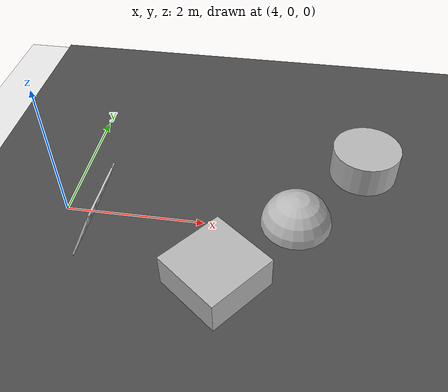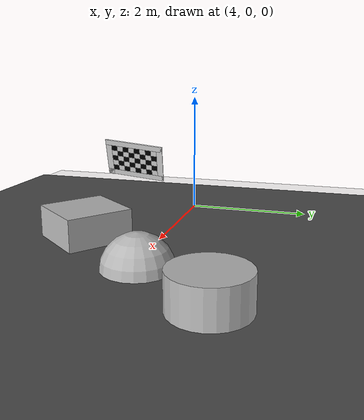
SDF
<sdf version="1.6">
 <world name="default">
  <light name="sun" type="directional">
   <pose>0 0 10 0 -0 0</pose>
   <diffuse>0.8 0.8 0.8 1</diffuse>
   <specular>0.2 0.2 0.2 1</specular>
   <attenuation>
    <range>1000</range>
    <constant>0.9</constant>
    <linear>0.01</linear>
    <quadratic>0.001</quadratic>
   </attenuation>
   <direction>-0.5 0.1 -0.9</direction>
   <spot><inner_angle>0</inner_angle><outer_angle>0</outer_angle><falloff>0</falloff></spot>
  </light>
  <model name="ground_plane">
   <static>1</static>
   <link name="link">
    <collision name="collision">
     <geometry><plane><normal>0 0 1</normal><size>100 100</size></plane></geometry>
     <surface><friction><ode><mu>100</mu><mu2>50</mu2></ode></friction></surface>
    </collision>
    <visual name="visual">
     <cast_shadows>0</cast_shadows>
     <geometry><plane><normal>0 0 1</normal><size>100 100</size></plane></geometry>
     <material>
      <script><uri>file://media/materials/scripts/gazebo.material</uri><name>Gazebo/Grey</name></script>
     </material>
    </visual>
   </link>
  </model>
  <gravity>0 0 -9.8</gravity>
  <magnetic_field>6e-06 2.3e-05 -4.2e-05</magnetic_field>
  <atmosphere type="adiabatic"/>
  <physics name="default_physics" default="0" type="ode">
   <max_step_size>0.001</max_step_size>
   <real_time_factor>1</real_time_factor>
   <real_time_update_rate>1000</real_time_update_rate>
  </physics>
  <scene><ambient>0.4 0.4 0.4 1</ambient><background>0.7 0.7 0.7 1</background><shadows>1</shadows></scene>
  <spherical_coordinates>
   <surface_model>EARTH_WGS84</surface_model>
   <latitude_deg>0</latitude_deg>
   <longitude_deg>0</longitude_deg>
   <elevation>0</elevation>
   <heading_deg>0</heading_deg>
  </spherical_coordinates>
  <model name="asphalt_plane">
   <static>1</static>
   <link name="link">
    <collision name="collision"><geometry><box><size>20 20 0.1</size></box></geometry></collision>
    <visual name="visual">
     <cast_shadows>0</cast_shadows>
     <geometry><box><size>20 20 0.1</size></box></geometry>
     <material>
      <script>
       <uri>model://asphalt_plane/materials/scripts</uri>
       <uri>model://asphalt_plane/materials/textures</uri>
       <name>vrc/asphalt</name>
      </script>
     </material>
    </visual>
   </link>
   <pose>12.4811 0 0 0 -0 0</pose>
  </model>
  <audio><device>default</device></audio>
  <model name="textured_shapes">
   <pose>7.28076 0.152221 0.03062 0 0 -0.6635</pose>
   <link name="box">
    <pose>0 -1.5 0 0 -0 0</pose>
    <collision name="collision"><geometry><box><size>1 1 1</size></box></geometry></collision>
    <visual name="visual">
     <geometry><box><size>1 1 1</size></box></geometry>
     <material>
      <script>
       <uri>model://textured_shapes/materials/scripts</uri>
       <uri>model://textured_shapes/materials/textures</uri>
       <name>TexturedShape/Squares</name>
      </script>
     </material>
    </visual>
    <inertial>
     <inertia><ixx>1</ixx><ixy>0</ixy><ixz>0</ixz><iyy>1</iyy><iyz>0</iyz><izz>1</izz></inertia>
     <mass>1</mass>
    </inertial>
   </link>
   <link name="sphere">
    <collision name="collision"><geometry><sphere><radius>0.5</radius></sphere></geometry></collision>
    <visual name="visual">
     <geometry><sphere><radius>0.5</radius></sphere></geometry>
     <material>
      <script>
       <uri>model://textured_shapes/materials/scripts</uri>
       <uri>model://textured_shapes/materials/textures</uri>
       <name>TexturedShape/Squares</name>
      </script>
     </material>
    </visual>
    <inertial>
     <inertia><ixx>1</ixx><ixy>0</ixy><ixz>0</ixz><iyy>1</iyy><iyz>0</iyz><izz>1</izz></inertia>
     <mass>1</mass>
    </inertial>
   </link>
   <link name="cylinder">
    <pose>0 1.5 0 0 -0 0</pose>
    <collision name="collision">
     <geometry><cylinder><radius>0.5</radius><length>1</length></cylinder></geometry>
    </collision>
    <visual name="visual">
     <geometry><cylinder><radius>0.5</radius><length>1</length></cylinder></geometry>
     <material>
      <script>
       <uri>model://textured_shapes/materials/scripts</uri>
       <uri>model://textured_shapes/materials/textures</uri>
       <name>TexturedShape/Squares</name>
      </script>
     </material>
    </visual>
    <inertial>
     <inertia><ixx>1</ixx><ixy>0</ixy><ixz>0</ixz><iyy>1</iyy><iyz>0</iyz><izz>1</izz></inertia>
     <mass>1</mass>
    </inertial>
   </link>
  </model>
  <model name="landmark">
   <static>1</static>
   <link name="base_link">
    <collision name="collision">
     <pose>0 0 0.01 0 -0 0</pose>
     <geometry><box><size>1 0.7 0.02</size></box></geometry>
    </collision>
    <visual name="border0">
     <pose>0.45 0 0.01 0 -0 0</pose>
     <geometry><box><size>0.1 0.7 0.02</size></box></geometry>
     <material><ambient>1 1 1 1</ambient><specular>1 1 1 1</specular><diffuse>1 1 1 1</diffuse></material>
    </visual>
    <visual name="border1">
     <pose>-0.45 0 0.01 0 -0 0</pose>
     <geometry><box><size>0.1 0.7 0.02</size></box></geometry>
     <material><ambient>1 1 1 1</ambient><specular>1 1 1 1</specular><diffuse>1 1 1 1</diffuse></material>
    </visual>
    <visual name="border2">
     <pose>0 0.3 0.01 0 -0 0</pose>
     <geometry><box><size>1 0.1 0.02</size></box></geometry>
     <material><ambient>1 1 1 1</ambient><specular>1 1 1 1</specular><diffuse>1 1 1 1</diffuse></material>
    </visual>
    <visual name="border3">
     <pose>0 -0.3 0.01 0 -0 0</pose>
     <geometry><box><size>1 0.1 0.02</size></box></geometry>
     <material><ambient>1 1 1 1</ambient><specular>1 1 1 1</specular><diffuse>1 1 1 1</diffuse></material>
    </visual>
    <pose>0.02 0 0 1.57 0 -1.57</pose>
    <visual name="74">
     <pose>0.35 0.2 0.01 0 -0 0</pose>
     <geometry><box><size>0.1 0.1 0.02</size></box></geometry>
     <material><ambient>0 0 0 1</ambient><specular>0 0 0 1</specular><diffuse>0 0 0 1</diffuse></material>
    </visual>
    <pose>0.02 0 0 1.57 0 -1.57</pose>
    <visual name="73">
     <pose>0.35 0.1 0.01 0 -0 0</pose>
     <geometry><box><size>0.1 0.1 0.02</size></box></geometry>
     <material><ambient>1 1 1 1</ambient><specular>1 1 1 1</specular><diffuse>1 1 1 1</diffuse></material>
    </visual>
    <pose>0.02 0 0 1.57 0 -1.57</pose>
    <visual name="72">
     <pose>0.35 0 0.01 0 -0 0</pose>
     <geometry><box><size>0.1 0.1 0.02</size></box></geometry>
     <material><ambient>0 0 0 1</ambient><specular>0 0 0 1</specular><diffuse>0 0 0 1</diffuse></material>
    </visual>
    <pose>0.02 0 0 1.57 0 -1.57</pose>
    <visual name="71">
     <pose>0.35 -0.1 0.01 0 -0 0</pose>
     <geometry><box><size>0.1 0.1 0.02</size></box></geometry>
     <material><ambient>1 1 1 1</ambient><specular>1 1 1 1</specular><diffuse>1 1 1 1</diffuse></material>
    </visual>
    <pose>0.02 0 0 1.57 0 -1.57</pose>
    <visual name="70">
     <pose>0.35 -0.2 0.01 0 -0 0</pose>
     <geometry><box><size>0.1 0.1 0.02</size></box></geometry>
     <material><ambient>0 0 0 1</ambient><specular>0 0 0 1</specular><diffuse>0 0 0 1</diffuse></material>
    </visual>
    <pose>0.02 0 0 1.57 0 -1.57</pose>
    <visual name="64">
     <pose>0.25 0.2 0.01 0 -0 0</pose>
     <geometry><box><size>0.1 0.1 0.02</size></box></geometry>
     <material><ambient>1 1 1 1</ambient><specular>1 1 1 1</specular><diffuse>1 1 1 1</diffuse></material>
    </visual>
    <pose>0.02 0 0 1.57 0 -1.57</pose>
    <visual name="63">
     <pose>0.25 0.1 0.01 0 -0 0</pose>
     <geometry><box><size>0.1 0.1 0.02</size></box></geometry>
     <material><ambient>0 0 0 1</ambient><specular>0 0 0 1</specular><diffuse>0 0 0 1</diffuse></material>
    </visual>
    <pose>0.02 0 0 1.57 0 -1.57</pose>
    <visual name="62">
     <pose>0.25 0 0.01 0 -0 0</pose>
     <geometry><box><size>0.1 0.1 0.02</size></box></geometry>
     <material><ambient>1 1 1 1</ambient><specular>1 1 1 1</specular><diffuse>1 1 1 1</diffuse></material>
    </visual>
    <pose>0.02 0 0 1.57 0 -1.57</pose>
    <visual name="61">
     <pose>0.25 -0.1 0.01 0 -0 0</pose>
     <geometry><box><size>0.1 0.1 0.02</size></box></geometry>
     <material><ambient>0 0 0 1</ambient><specular>0 0 0 1</specular><diffuse>0 0 0 1</diffuse></material>
    </visual>
    <pose>0.02 0 0 1.57 0 -1.57</pose>
    <visual name="60">
     <pose>0.25 -0.2 0.01 0 -0 0</pose>
     <geometry><box><size>0.1 0.1 0.02</size></box></geometry>
     <material><ambient>1 1 1 1</ambient><specular>1 1 1 1</specular><diffuse>1 1 1 1</diffuse></material>
    </visual>
    <pose>0.02 0 0 1.57 0 -1.57</pose>
    <visual name="54">
     <pose>0.15 0.2 0.01 0 -0 0</pose>
     <geometry><box><size>0.1 0.1 0.02</size></box></geometry>
     <material><ambient>0 0 0 1</ambient><specular>0 0 0 1</specular><diffuse>0 0 0 1</diffuse></material>
    </visual>
    <pose>0.02 0 0 1.57 0 -1.57</pose>
    <visual name="53">
     <pose>0.15 0.1 0.01 0 -0 0</pose>
     <geometry><box><size>0.1 0.1 0.02</size></box></geometry>
     <material><ambient>1 1 1 1</ambient><specular>1 1 1 1</specular><diffuse>1 1 1 1</diffuse></material>
    </visual>
    <pose>0.02 0 0 1.57 0 -1.57</pose>
    <visual name="52">
     <pose>0.15 0 0.01 0 -0 0</pose>
     <geometry><box><size>0.1 0.1 0.02</size></box></geometry>
     <material><ambient>0 0 0 1</ambient><specular>0 0 0 1</specular><diffuse>0 0 0 1</diffuse></material>
    </visual>
    <pose>0.02 0 0 1.57 0 -1.57</pose>
    <visual name="51">
     <pose>0.15 -0.1 0.01 0 -0 0</pose>
     <geometry><box><size>0.1 0.1 0.02</size></box></geometry>
     <material><ambient>1 1 1 1</ambient><specular>1 1 1 1</specular><diffuse>1 1 1 1</diffuse></material>
    </visual>
    <pose>0.02 0 0 1.57 0 -1.57</pose>
    <visual name="50">
     <pose>0.15 -0.2 0.01 0 -0 0</pose>
     <geometry><box><size>0.1 0.1 0.02</size></box></geometry>
     <material><ambient>0 0 0 1</ambient><specular>0 0 0 1</specular><diffuse>0 0 0 1</diffuse></material>
    </visual>
    <pose>0.02 0 0 1.57 0 -1.57</pose>
    <visual name="44">
     <pose>0.05 0.2 0.01 0 -0 0</pose>
     <geometry><box><size>0.1 0.1 0.02</size></box></geometry>
     <material><ambient>1 1 1 1</ambient><specular>1 1 1 1</specular><diffuse>1 1 1 1</diffuse></material>
    </visual>
    <pose>0.02 0 0 1.57 0 -1.57</pose>
    <visual name="43">
     <pose>0.05 0.1 0.01 0 -0 0</pose>
     <geometry><box><size>0.1 0.1 0.02</size></box></geometry>
     <material><ambient>0 0 0 1</ambient><specular>0 0 0 1</specular><diffuse>0 0 0 1</diffuse></material>
    </visual>
    <pose>0.02 0 0 1.57 0 -1.57</pose>
    <visual name="42">
     <pose>0.05 0 0.01 0 -0 0</pose>
     <geometry><box><size>0.1 0.1 0.02</size></box></geometry>
     <material><ambient>1 1 1 1</ambient><specular>1 1 1 1</specular><diffuse>1 1 1 1</diffuse></material>
    </visual>
    <pose>0.02 0 0 1.57 0 -1.57</pose>
    <visual name="41">
     <pose>0.05 -0.1 0.01 0 -0 0</pose>
     <geometry><box><size>0.1 0.1 0.02</size></box></geometry>
     <material><ambient>0 0 0 1</ambient><specular>0 0 0 1</specular><diffuse>0 0 0 1</diffuse></material>
    </visual>
    <pose>0.02 0 0 1.57 0 -1.57</pose>
    <visual name="40">
     <pose>0.05 -0.2 0.01 0 -0 0</pose>
     <geometry><box><size>0.1 0.1 0.02</size></box></geometry>
     <material><ambient>1 1 1 1</ambient><specular>1 1 1 1</specular><diffuse>1 1 1 1</diffuse></material>
    </visual>
    <pose>0.02 0 0 1.57 0 -1.57</pose>
    <visual name="34">
     <pose>-0.05 0.2 0.01 0 -0 0</pose>
     <geometry><box><size>0.1 0.1 0.02</size></box></geometry>
     <material><ambient>0 0 0 1</ambient><specular>0 0 0 1</specular><diffuse>0 0 0 1</diffuse></material>
    </visual>
    <pose>0.02 0 0 1.57 0 -1.57</pose>
    <visual name="33">
     <pose>-0.05 0.1 0.01 0 -0 0</pose>
     <geometry><box><size>0.1 0.1 0.02</size></box></geometry>
     <material><ambient>1 1 1 1</ambient><specular>1 1 1 1</specular><diffuse>1 1 1 1</diffuse></material>
    </visual>
    <pose>0.02 0 0 1.57 0 -1.57</pose>
    <visual name="32">
     <pose>-0.05 0 0.01 0 -0 0</pose>
     <geometry><box><size>0.1 0.1 0.02</size></box></geometry>
     <material><ambient>0 0 0 1</ambient><specular>0 0 0 1</specular><diffuse>0 0 0 1</diffuse></material>
    </visual>
    <pose>0.02 0 0 1.57 0 -1.57</pose>
    <visual name="31">
     <pose>-0.05 -0.1 0.01 0 -0 0</pose>
     <geometry><box><size>0.1 0.1 0.02</size></box></geometry>
     <material><ambient>1 1 1 1</ambient><specular>1 1 1 1</specular><diffuse>1 1 1 1</diffuse></material>
    </visual>
    <pose>0.02 0 0 1.57 0 -1.57</pose>
    <visual name="30">
     <pose>-0.05 -0.2 0.01 0 -0 0</pose>
     <geometry><box><size>0.1 0.1 0.02</size></box></geometry>
     <material><ambient>0 0 0 1</ambient><specular>0 0 0 1</specular><diffuse>0 0 0 1</diffuse></material>
    </visual>
    <pose>0.02 0 0 1.57 0 -1.57</pose>
    <visual name="24">
     <pose>-0.15 0.2 0.01 0 -0 0</pose>
     <geometry><box><size>0.1 0.1 0.02</size></box></geometry>
     <material><ambient>1 1 1 1</ambient><specular>1 1 1 1</specular><diffuse>1 1 1 1</diffuse></material>
    </visual>
    <pose>0.02 0 0 1.57 0 -1.57</pose>
    <visual name="23">
     <pose>-0.15 0.1 0.01 0 -0 0</pose>
     <geometry><box><size>0.1 0.1 0.02</size></box></geometry>
     <material><ambient>0 0 0 1</ambient><specular>0 0 0 1</specular><diffuse>0 0 0 1</diffuse></material>
    </visual>
    <pose>0.02 0 0 1.57 0 -1.57</pose>
    <visual name="22">
     <pose>-0.15 0 0.01 0 -0 0</pose>
     <geometry><box><size>0.1 0.1 0.02</size></box></geometry>
     <material><ambient>1 1 1 1</ambient><specular>1 1 1 1</specular><diffuse>1 1 1 1</diffuse></material>
    </visual>
    <pose>0.02 0 0 1.57 0 -1.57</pose>
    <visual name="21">
     <pose>-0.15 -0.1 0.01 0 -0 0</pose>
     <geometry><box><size>0.1 0.1 0.02</size></box></geometry>
     <material><ambient>0 0 0 1</ambient><specular>0 0 0 1</specular><diffuse>0 0 0 1</diffuse></material>
    </visual>
    <pose>0.02 0 0 1.57 0 -1.57</pose>
    <visual name="20">
     <pose>-0.15 -0.2 0.01 0 -0 0</pose>
     <geometry><box><size>0.1 0.1 0.02</size></box></geometry>
     <material><ambient>1 1 1 1</ambient><specular>1 1 1 1</specular><diffuse>1 1 1 1</diffuse></material>
    </visual>
    <pose>0.02 0 0 1.57 0 -1.57</pose>
    <visual name="14">
     <pose>-0.25 0.2 0.01 0 -0 0</pose>
     <geometry><box><size>0.1 0.1 0.02</size></box></geometry>
     <material><ambient>0 0 0 1</ambient><specular>0 0 0 1</specular><diffuse>0 0 0 1</diffuse></material>
    </visual>
    <pose>0.02 0 0 1.57 0 -1.57</pose>
    <visual name="13">
     <pose>-0.25 0.1 0.01 0 -0 0</pose>
     <geometry><box><size>0.1 0.1 0.02</size></box></geometry>
     <material><ambient>1 1 1 1</ambient><specular>1 1 1 1</specular><diffuse>1 1 1 1</diffuse></material>
    </visual>
    <pose>0.02 0 0 1.57 0 -1.57</pose>
    <visual name="12">
     <pose>-0.25 0 0.01 0 -0 0</pose>
     <geometry><box><size>0.1 0.1 0.02</size></box></geometry>
     <material><ambient>0 0 0 1</ambient><specular>0 0 0 1</specular><diffuse>0 0 0 1</diffuse></material>
    </visual>
    <pose>0.02 0 0 1.57 0 -1.57</pose>
    <visual name="11">
     <pose>-0.25 -0.1 0.01 0 -0 0</pose>
     <geometry><box><size>0.1 0.1 0.02</size></box></geometry>
     <material><ambient>1 1 1 1</ambient><specular>1 1 1 1</specular><diffuse>1 1 1 1</diffuse></material>
    </visual>
    <pose>0.02 0 0 1.57 0 -1.57</pose>
    <visual name="10">
     <pose>-0.25 -0.2 0.01 0 -0 0</pose>
     <geometry><box><size>0.1 0.1 0.02</size></box></geometry>
     <material><ambient>0 0 0 1</ambient><specular>0 0 0 1</specular><diffuse>0 0 0 1</diffuse></material>
    </visual>
    <pose>0.02 0 0 1.57 0 -1.57</pose>
    <visual name="04">
     <pose>-0.35 0.2 0.01 0 -0 0</pose>
     <geometry><box><size>0.1 0.1 0.02</size></box></geometry>
     <material><ambient>1 1 1 1</ambient><specular>1 1 1 1</specular><diffuse>1 1 1 1</diffuse></material>
    </visual>
    <pose>0.02 0 0 1.57 0 -1.57</pose>
    <visual name="03">
     <pose>-0.35 0.1 0.01 0 -0 0</pose>
     <geometry><box><size>0.1 0.1 0.02</size></box></geometry>
     <material><ambient>0 0 0 1</ambient><specular>0 0 0 1</specular><diffuse>0 0 0 1</diffuse></material>
    </visual>
    <pose>0.02 0 0 1.57 0 -1.57</pose>
    <visual name="02">
     <pose>-0.35 0 0.01 0 -0 0</pose>
     <geometry><box><size>0.1 0.1 0.02</size></box></geometry>
     <material><ambient>1 1 1 1</ambient><specular>1 1 1 1</specular><diffuse>1 1 1 1</diffuse></material>
    </visual>
    <pose>0.02 0 0 1.57 0 -1.57</pose>
    <visual name="01">
     <pose>-0.35 -0.1 0.01 0 -0 0</pose>
     <geometry><box><size>0.1 0.1 0.02</size></box></geometry>
     <material><ambient>0 0 0 1</ambient><specular>0 0 0 1</specular><diffuse>0 0 0 1</diffuse></material>
    </visual>
    <pose>0.02 0 0 1.57 0 -1.57</pose>
    <visual name="00">
     <pose>-0.35 -0.2 0.01 0 -0 0</pose>
     <geometry><box><size>0.1 0.1 0.02</size></box></geometry>
     <material><ambient>1 1 1 1</ambient><specular>1 1 1 1</specular><diffuse>1 1 1 1</diffuse></material>
    </visual>
   </link>
   <pose>4.85271 -0.82693 0.982419 -0.112172 0.42862 -0.013939</pose>
  </model>
  <light name="user_directional_light_0" type="directional">
   <pose>2.48968 3.30304 1 0 -0 0</pose>
   <diffuse>0.5 0.5 0.5 1</diffuse>
   <specular>0.1 0.1 0.1 1</specular>
   <direction>0.1 0.1 -0.9</direction>
   <attenuation>
    <range>20</range>
    <constant>0.5</constant>
    <linear>0.01</linear>
    <quadratic>0.001</quadratic>
   </attenuation>
  </light>
 </world>
</sdf>
